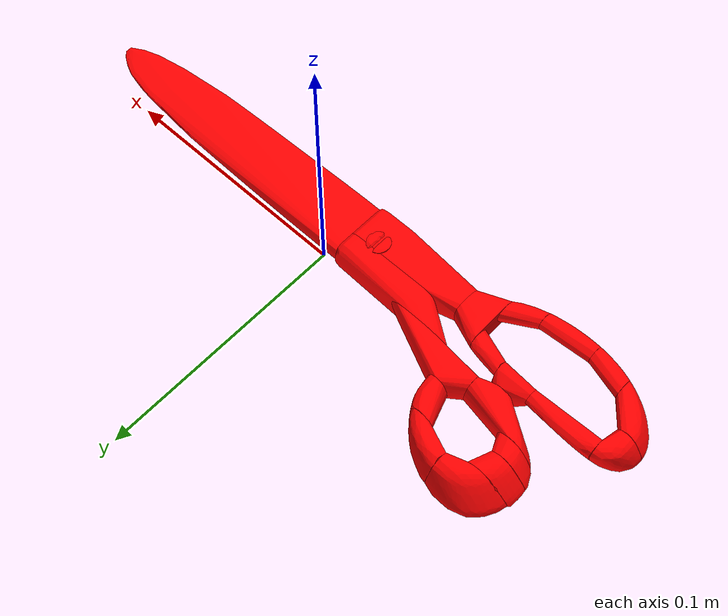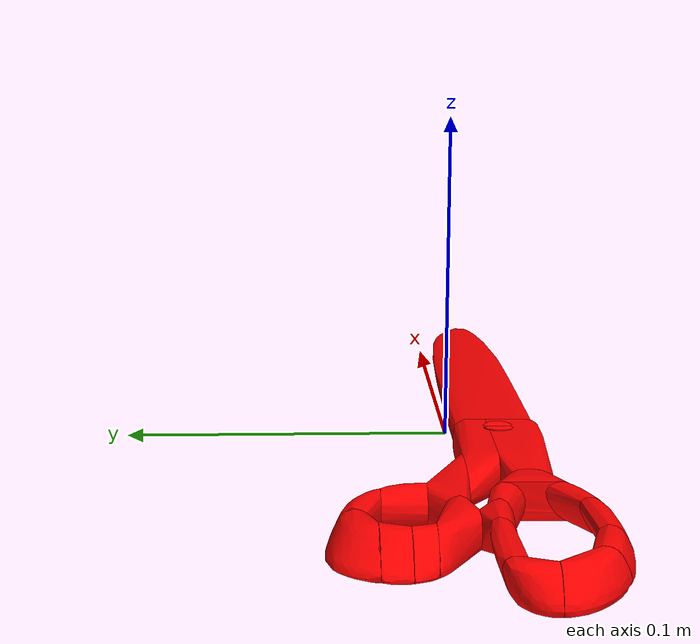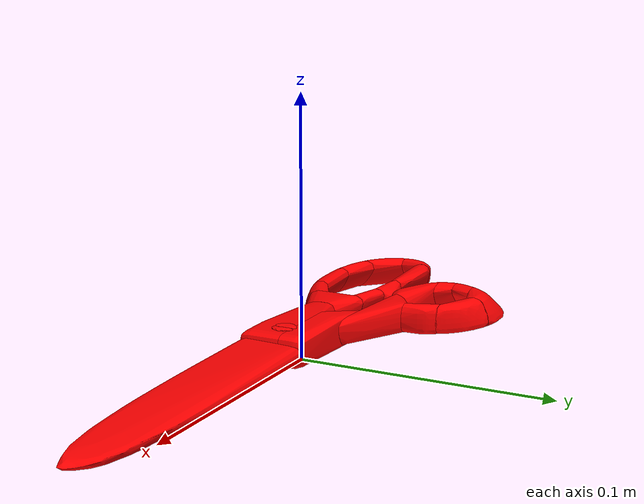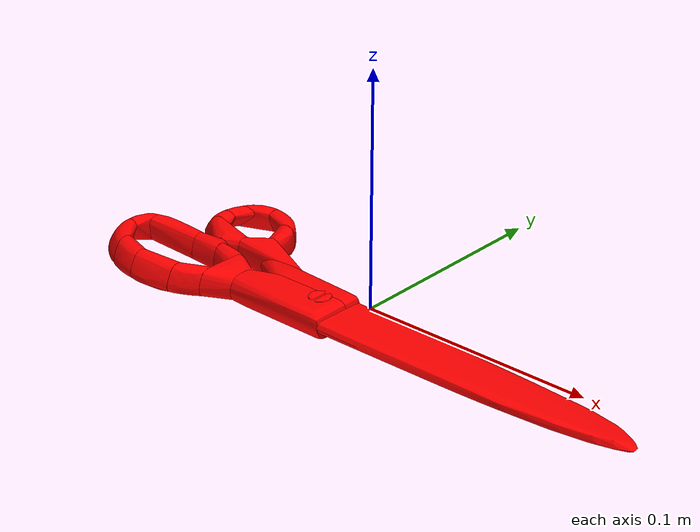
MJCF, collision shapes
<?xml version="1.0" ?>
<mujoco model="scissors_2">
	<compiler meshdir="scissors_2/meshes" texturedir="scissors_2/textures" angle="radian" autolimits="true" balanceinertia="true" boundmass="0.000001" boundinertia="0.000001"/>
	<default>
		<default class="visual">
			<geom contype="0" conaffinity="0"/>
		</default>
		<default class="collision">
			<geom rgba="1.0 0.0 0.0 0.0"/>
		</default>
	</default>
	<asset>
		<mesh name="Scissors2Screw" file="obj/Scissors2Screw.obj" scale="1.0 1.0 1.0"/>
		<mesh name="Scissors2Screw_001" file="stl/Scissors2Screw_001.stl" scale="1.0 1.0 1.0"/>
		<mesh name="Scissors2Screw_002" file="stl/Scissors2Screw_002.stl" scale="1.0 1.0 1.0"/>
		<mesh name="Scissors2Screw_003" file="stl/Scissors2Screw_003.stl" scale="1.0 1.0 1.0"/>
		<mesh name="Scissors2Screw_004" file="stl/Scissors2Screw_004.stl" scale="1.0 1.0 1.0"/>
		<mesh name="Scissors2Screw_005" file="stl/Scissors2Screw_005.stl" scale="1.0 1.0 1.0"/>
		<mesh name="Scissors2Blade" file="obj/Scissors2Blade.obj" scale="1.0 1.0 1.0"/>
		<mesh name="Scissors2Blade_001" file="stl/Scissors2Blade_001.stl" scale="1.0 1.0 1.0"/>
		<mesh name="Scissors2Hilt" file="obj/Scissors2Hilt.obj" scale="1.0 1.0 1.0"/>
		<mesh name="Scissors2Hilt_001" file="stl/Scissors2Hilt_001.stl" scale="1.0 1.0 1.0"/>
		<mesh name="Scissors2Hilt_002" file="stl/Scissors2Hilt_002.stl" scale="1.0 1.0 1.0"/>
		<mesh name="Scissors2Hilt_003" file="stl/Scissors2Hilt_003.stl" scale="1.0 1.0 1.0"/>
		<mesh name="Scissors2Hilt_004" file="stl/Scissors2Hilt_004.stl" scale="1.0 1.0 1.0"/>
		<mesh name="Scissors2Hilt_005" file="stl/Scissors2Hilt_005.stl" scale="1.0 1.0 1.0"/>
		<mesh name="Scissors2Hilt_006" file="stl/Scissors2Hilt_006.stl" scale="1.0 1.0 1.0"/>
		<mesh name="Scissors2Hilt_007" file="stl/Scissors2Hilt_007.stl" scale="1.0 1.0 1.0"/>
		<mesh name="Scissors2Hilt_008" file="stl/Scissors2Hilt_008.stl" scale="1.0 1.0 1.0"/>
		<mesh name="Scissors2Hilt_009" file="stl/Scissors2Hilt_009.stl" scale="1.0 1.0 1.0"/>
		<mesh name="Scissors2Hilt_010" file="stl/Scissors2Hilt_010.stl" scale="1.0 1.0 1.0"/>
		<mesh name="Scissors2Hilt_011" file="stl/Scissors2Hilt_011.stl" scale="1.0 1.0 1.0"/>
		<mesh name="Scissors2Hilt_012" file="stl/Scissors2Hilt_012.stl" scale="1.0 1.0 1.0"/>
		<mesh name="Scissors2Hilt_013" file="stl/Scissors2Hilt_013.stl" scale="1.0 1.0 1.0"/>
		<mesh name="Scissors2Hilt_014" file="stl/Scissors2Hilt_014.stl" scale="1.0 1.0 1.0"/>
		<mesh name="Scissors2Hilt_015" file="stl/Scissors2Hilt_015.stl" scale="1.0 1.0 1.0"/>
		<mesh name="Scissors2Hilt_016" file="stl/Scissors2Hilt_016.stl" scale="1.0 1.0 1.0"/>
		<mesh name="Scissors2Hilt_017" file="stl/Scissors2Hilt_017.stl" scale="1.0 1.0 1.0"/>
		<mesh name="Scissors2Hilt_018" file="stl/Scissors2Hilt_018.stl" scale="1.0 1.0 1.0"/>
		<material name="M_Scissors2Screw" texture="T_Scissors2Screw"/>
		<material name="M_Scissors2Blade" texture="T_Scissors2Blade"/>
		<material name="M_Scissors2Hilt" texture="T_Scissors2Hilt"/>
		<texture name="T_Scissors2Screw" type="2d" file="T_Scissors2Screw.png"/>
		<texture name="T_Scissors2Blade" type="2d" file="T_Scissors2Blade.png"/>
		<texture name="T_Scissors2Hilt" type="2d" file="T_Scissors2Hilt.png"/>
	</asset>
	<worldbody>
		<body name="scissors_2" pos="0.0 0.0 0.0" quat="1.0 0.0 0.0 0.0">
			<body name="scissors2_screw" pos="0.0 0.0 0.0" quat="1.0 0.0 0.0 0.0">
				<inertial mass="0.0038253292441368103" pos="-0.013648378662765026 -0.01476330030709505 0.0014566575409844518" quat="0.6586766242980957 0.6361417770385742 0.307063490152359 0.2591926157474518" diaginertia="8.136823481663669e-08 1.582559661983396e-06 1.636042043173802e-06"/>
				<geom name="Scissors2Screw" type="mesh" pos="0.0 0.0 0.0" quat="1.0 0.0 0.0 0.0" mesh="Scissors2Screw" material="M_Scissors2Screw" class="visual"/>
				<geom name="Scissors2Screw_001" type="mesh" pos="0.0 0.0 0.0" quat="1.0 0.0 0.0 0.0" mesh="Scissors2Screw_001" class="collision"/>
				<geom name="Scissors2Screw_002" type="mesh" pos="0.0 0.0 0.0" quat="1.0 0.0 0.0 0.0" mesh="Scissors2Screw_002" class="collision"/>
				<geom name="Scissors2Screw_003" type="mesh" pos="0.0 0.0 0.0" quat="1.0 0.0 0.0 0.0" mesh="Scissors2Screw_003" class="collision"/>
				<geom name="Scissors2Screw_004" type="mesh" pos="0.0 0.0 0.0" quat="1.0 0.0 0.0 0.0" mesh="Scissors2Screw_004" class="collision"/>
				<geom name="Scissors2Screw_005" type="mesh" pos="0.0 0.0 0.0" quat="1.0 0.0 0.0 0.0" mesh="Scissors2Screw_005" class="collision"/>
			</body>
			<body name="scissors2_hilt" pos="0.0 0.0 0.0" quat="1.0 0.0 0.0 0.0">
				<inertial mass="0.18828648328781128" pos="-0.061081741005182266 -0.007015101611614227 0.00015865601017139852" quat="0.9994951486587524 -0.003303846111521125 0.0011403514072299004 0.031578291207551956" diaginertia="6.741139804944396e-05 0.0009261170634999871 0.0009907563216984272"/>
				<geom name="Scissors2Hilt" type="mesh" pos="0.0 0.0 0.0" quat="1.0 0.0 0.0 0.0" mesh="Scissors2Hilt" material="M_Scissors2Hilt" class="visual"/>
				<geom name="Scissors2Hilt_001" type="mesh" pos="0.0 0.0 0.0" quat="1.0 0.0 0.0 0.0" mesh="Scissors2Hilt_001" class="collision"/>
				<geom name="Scissors2Hilt_002" type="mesh" pos="0.0 0.0 0.0" quat="1.0 0.0 0.0 0.0" mesh="Scissors2Hilt_002" class="collision"/>
				<geom name="Scissors2Hilt_003" type="mesh" pos="0.0 0.0 0.0" quat="1.0 0.0 0.0 0.0" mesh="Scissors2Hilt_003" class="collision"/>
				<geom name="Scissors2Hilt_004" type="mesh" pos="0.0 0.0 0.0" quat="1.0 0.0 0.0 0.0" mesh="Scissors2Hilt_004" class="collision"/>
				<geom name="Scissors2Hilt_005" type="mesh" pos="0.0 0.0 0.0" quat="1.0 0.0 0.0 0.0" mesh="Scissors2Hilt_005" class="collision"/>
				<geom name="Scissors2Hilt_006" type="mesh" pos="0.0 0.0 0.0" quat="1.0 0.0 0.0 0.0" mesh="Scissors2Hilt_006" class="collision"/>
				<geom name="Scissors2Hilt_007" type="mesh" pos="0.0 0.0 0.0" quat="1.0 0.0 0.0 0.0" mesh="Scissors2Hilt_007" class="collision"/>
				<geom name="Scissors2Hilt_008" type="mesh" pos="0.0 0.0 0.0" quat="1.0 0.0 0.0 0.0" mesh="Scissors2Hilt_008" class="collision"/>
				<geom name="Scissors2Hilt_009" type="mesh" pos="0.0 0.0 0.0" quat="1.0 0.0 0.0 0.0" mesh="Scissors2Hilt_009" class="collision"/>
				<geom name="Scissors2Hilt_010" type="mesh" pos="0.0 0.0 0.0" quat="1.0 0.0 0.0 0.0" mesh="Scissors2Hilt_010" class="collision"/>
				<geom name="Scissors2Hilt_011" type="mesh" pos="0.0 0.0 0.0" quat="1.0 0.0 0.0 0.0" mesh="Scissors2Hilt_011" class="collision"/>
				<geom name="Scissors2Hilt_012" type="mesh" pos="0.0 0.0 0.0" quat="1.0 0.0 0.0 0.0" mesh="Scissors2Hilt_012" class="collision"/>
				<geom name="Scissors2Hilt_013" type="mesh" pos="0.0 0.0 0.0" quat="1.0 0.0 0.0 0.0" mesh="Scissors2Hilt_013" class="collision"/>
				<geom name="Scissors2Hilt_014" type="mesh" pos="0.0 0.0 0.0" quat="1.0 0.0 0.0 0.0" mesh="Scissors2Hilt_014" class="collision"/>
				<geom name="Scissors2Hilt_015" type="mesh" pos="0.0 0.0 0.0" quat="1.0 0.0 0.0 0.0" mesh="Scissors2Hilt_015" class="collision"/>
				<geom name="Scissors2Hilt_016" type="mesh" pos="0.0 0.0 0.0" quat="1.0 0.0 0.0 0.0" mesh="Scissors2Hilt_016" class="collision"/>
				<geom name="Scissors2Hilt_017" type="mesh" pos="0.0 0.0 0.0" quat="1.0 0.0 0.0 0.0" mesh="Scissors2Hilt_017" class="collision"/>
				<geom name="Scissors2Hilt_018" type="mesh" pos="0.0 0.0 0.0" quat="1.0 0.0 0.0 0.0" mesh="Scissors2Hilt_018" class="collision"/>
			</body>
			<body name="scissors2_blade" pos="0.0 0.0 0.0" quat="1.0 0.0 0.0 0.0">
				<inertial mass="0.05467967316508293" pos="0.04773222282528877 -0.015027797780930996 0.00012023688032058999" quat="0.9940807223320007 -0.018958231434226036 0.0011590048670768738 -0.10697101056575775" diaginertia="5.860484634467866e-06 0.00019576605700422078 0.0002015319187194109"/>
				<geom name="Scissors2Blade" type="mesh" pos="0.0 0.0 0.0" quat="1.0 0.0 0.0 0.0" mesh="Scissors2Blade" material="M_Scissors2Blade" class="visual"/>
				<geom name="Scissors2Blade_001" type="mesh" pos="0.0 0.0 0.0" quat="1.0 0.0 0.0 0.0" mesh="Scissors2Blade_001" class="collision"/>
			</body>
		</body>
	</worldbody>
	<equality/>
</mujoco>
